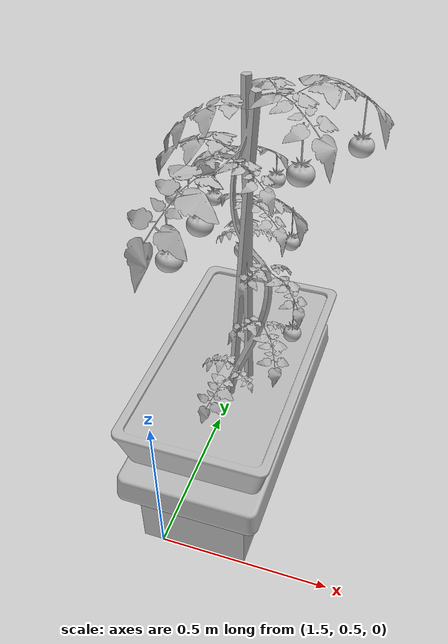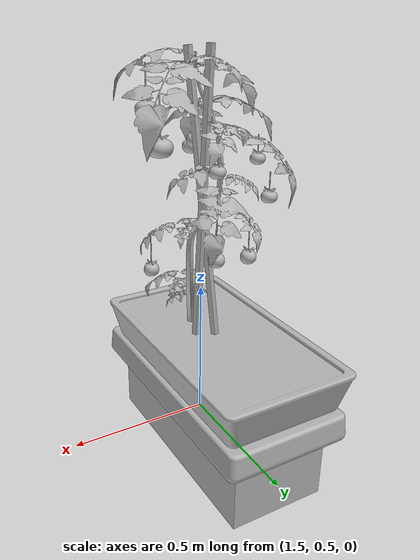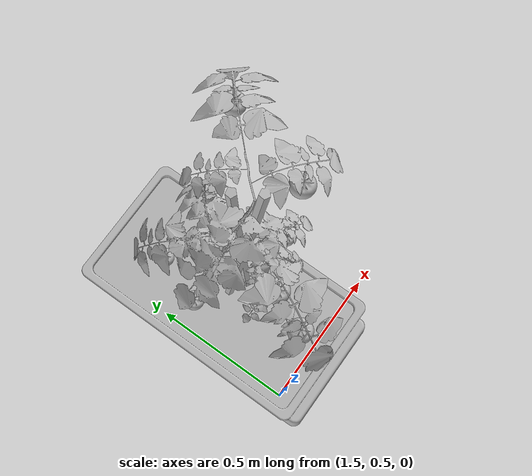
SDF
<sdf version="1.6">
 <world name="default">
  <model name="plant11">
   <static>0</static>
   <link name="tomato_plant_link">
    <inertial>
     <mass>20</mass>
     <inertia><ixx>1</ixx><ixy>0</ixy><ixz>0</ixz><iyy>1</iyy><iyz>0</iyz><izz>1</izz></inertia>
    </inertial>
    <visual name="visual">
     <geometry><mesh><uri>model://tomato_plant/meshes/tomato_plant.obj</uri></mesh></geometry>
    </visual>
    <collision name="collision">
     <pose>0 0 0.01 0 -0 0</pose>
     <geometry><cylinder><radius>0.2</radius><length>0.02</length></cylinder></geometry>
    </collision>
   </link>
   <link name="t_link_0">
    <pose>0.176111 0.046061 0.713729 0 -0 0</pose>
    <inertial>
     <mass>0.1</mass>
     <inertia><ixx>1</ixx><ixy>0</ixy><ixz>0</ixz><iyy>1</iyy><iyz>0</iyz><izz>1</izz></inertia>
    </inertial>
    <collision name="collision"><geometry><sphere><radius>0.02</radius></sphere></geometry></collision>
    <visual name="visual">
     <geometry><mesh><uri>model://green_tomato/meshes/green_tomato.obj</uri></mesh></geometry>
    </visual>
   </link>
   <joint name="t_joint_0" type="fixed">
    <parent>tomato_plant_link</parent>
    <child>t_link_0</child>
    <axis>
     <xyz>0 0 1</xyz>
     <use_parent_model_frame>1</use_parent_model_frame>
     <limit><lower>-1e+16</lower><upper>1e+16</upper></limit>
    </axis>
    <sensor name="force_torque" type="force_torque">
     <always_on>1</always_on>
     <update_rate>250</update_rate>
     <plugin name="breakable_0" filename="libBreakableJointPlugin.so">
      <breaking_force_N>20</breaking_force_N>
     </plugin>
    </sensor>
   </joint>
   <link name="t_link_1">
    <pose>0.063172 0.108629 0.685474 0 -0 0</pose>
    <inertial>
     <mass>0.1</mass>
     <inertia><ixx>1</ixx><ixy>0</ixy><ixz>0</ixz><iyy>1</iyy><iyz>0</iyz><izz>1</izz></inertia>
    </inertial>
    <collision name="collision"><geometry><sphere><radius>0.02</radius></sphere></geometry></collision>
    <visual name="visual">
     <geometry><mesh><uri>model://green_tomato/meshes/green_tomato.obj</uri></mesh></geometry>
    </visual>
   </link>
   <joint name="t_joint_1" type="fixed">
    <parent>tomato_plant_link</parent>
    <child>t_link_1</child>
    <axis>
     <xyz>0 0 1</xyz>
     <use_parent_model_frame>1</use_parent_model_frame>
     <limit><lower>-1e+16</lower><upper>1e+16</upper></limit>
    </axis>
    <sensor name="force_torque" type="force_torque">
     <always_on>1</always_on>
     <update_rate>250</update_rate>
     <plugin name="breakable_1" filename="libBreakableJointPlugin.so">
      <breaking_force_N>20</breaking_force_N>
     </plugin>
    </sensor>
   </joint>
   <link name="t_link_2">
    <pose>0.062027 -0.170581 0.614534 0 -0 0</pose>
    <inertial>
     <mass>0.1</mass>
     <inertia><ixx>1</ixx><ixy>0</ixy><ixz>0</ixz><iyy>1</iyy><iyz>0</iyz><izz>1</izz></inertia>
    </inertial>
    <collision name="collision"><geometry><sphere><radius>0.02</radius></sphere></geometry></collision>
    <visual name="visual">
     <geometry><mesh><uri>model://green_tomato/meshes/green_tomato.obj</uri></mesh></geometry>
    </visual>
   </link>
   <joint name="t_joint_2" type="fixed">
    <parent>tomato_plant_link</parent>
    <child>t_link_2</child>
    <axis>
     <xyz>0 0 1</xyz>
     <use_parent_model_frame>1</use_parent_model_frame>
     <limit><lower>-1e+16</lower><upper>1e+16</upper></limit>
    </axis>
    <sensor name="force_torque" type="force_torque">
     <always_on>1</always_on>
     <update_rate>250</update_rate>
     <plugin name="breakable_2" filename="libBreakableJointPlugin.so">
      <breaking_force_N>20</breaking_force_N>
     </plugin>
    </sensor>
   </joint>
   <link name="t_link_3">
    <pose>0.114746 0.0304 0.926457 0 -0 0</pose>
    <inertial>
     <mass>0.1</mass>
     <inertia><ixx>1</ixx><ixy>0</ixy><ixz>0</ixz><iyy>1</iyy><iyz>0</iyz><izz>1</izz></inertia>
    </inertial>
    <collision name="collision"><geometry><sphere><radius>0.02</radius></sphere></geometry></collision>
    <visual name="visual">
     <geometry><mesh><uri>model://yellow_tomato/meshes/yellow_tomato.obj</uri></mesh></geometry>
    </visual>
   </link>
   <joint name="t_joint_3" type="fixed">
    <parent>tomato_plant_link</parent>
    <child>t_link_3</child>
    <axis>
     <xyz>0 0 1</xyz>
     <use_parent_model_frame>1</use_parent_model_frame>
     <limit><lower>-1e+16</lower><upper>1e+16</upper></limit>
    </axis>
    <sensor name="force_torque" type="force_torque">
     <always_on>1</always_on>
     <update_rate>250</update_rate>
     <plugin name="breakable_3" filename="libBreakableJointPlugin.so">
      <breaking_force_N>20</breaking_force_N>
     </plugin>
    </sensor>
   </joint>
   <link name="t_link_4">
    <pose>0.003426 0.147925 0.840454 0 -0 0</pose>
    <inertial>
     <mass>0.1</mass>
     <inertia><ixx>1</ixx><ixy>0</ixy><ixz>0</ixz><iyy>1</iyy><iyz>0</iyz><izz>1</izz></inertia>
    </inertial>
    <collision name="collision"><geometry><sphere><radius>0.02</radius></sphere></geometry></collision>
    <visual name="visual">
     <geometry><mesh><uri>model://yellow_tomato/meshes/yellow_tomato.obj</uri></mesh></geometry>
    </visual>
   </link>
   <joint name="t_joint_4" type="fixed">
    <parent>tomato_plant_link</parent>
    <child>t_link_4</child>
    <axis>
     <xyz>0 0 1</xyz>
     <use_parent_model_frame>1</use_parent_model_frame>
     <limit><lower>-1e+16</lower><upper>1e+16</upper></limit>
    </axis>
    <sensor name="force_torque" type="force_torque">
     <always_on>1</always_on>
     <update_rate>250</update_rate>
     <plugin name="breakable_4" filename="libBreakableJointPlugin.so">
      <breaking_force_N>20</breaking_force_N>
     </plugin>
    </sensor>
   </joint>
   <link name="t_link_5">
    <pose>-0.12391 0.091553 0.91111 0 -0 0</pose>
    <inertial>
     <mass>0.1</mass>
     <inertia><ixx>1</ixx><ixy>0</ixy><ixz>0</ixz><iyy>1</iyy><iyz>0</iyz><izz>1</izz></inertia>
    </inertial>
    <collision name="collision"><geometry><sphere><radius>0.02</radius></sphere></geometry></collision>
    <visual name="visual">
     <geometry><mesh><uri>model://yellow_tomato/meshes/yellow_tomato.obj</uri></mesh></geometry>
    </visual>
   </link>
   <joint name="t_joint_5" type="fixed">
    <parent>tomato_plant_link</parent>
    <child>t_link_5</child>
    <axis>
     <xyz>0 0 1</xyz>
     <use_parent_model_frame>1</use_parent_model_frame>
     <limit><lower>-1e+16</lower><upper>1e+16</upper></limit>
    </axis>
    <sensor name="force_torque" type="force_torque">
     <always_on>1</always_on>
     <update_rate>250</update_rate>
     <plugin name="breakable_5" filename="libBreakableJointPlugin.so">
      <breaking_force_N>20</breaking_force_N>
     </plugin>
    </sensor>
   </joint>
   <link name="t_link_6">
    <pose>-0.23014 -0.132697 0.911579 0 -0 0</pose>
    <inertial>
     <mass>0.1</mass>
     <inertia><ixx>1</ixx><ixy>0</ixy><ixz>0</ixz><iyy>1</iyy><iyz>0</iyz><izz>1</izz></inertia>
    </inertial>
    <collision name="collision"><geometry><sphere><radius>0.03</radius></sphere></geometry></collision>
    <visual name="visual">
     <geometry><mesh><uri>model://red_tomato/meshes/red_tomato.obj</uri></mesh></geometry>
    </visual>
   </link>
   <joint name="t_joint_6" type="fixed">
    <parent>tomato_plant_link</parent>
    <child>t_link_6</child>
    <axis>
     <xyz>0 0 1</xyz>
     <use_parent_model_frame>1</use_parent_model_frame>
     <limit><lower>-1e+16</lower><upper>1e+16</upper></limit>
    </axis>
    <sensor name="force_torque" type="force_torque">
     <always_on>1</always_on>
     <update_rate>250</update_rate>
     <plugin name="breakable_6" filename="libBreakableJointPlugin.so">
      <breaking_force_N>20</breaking_force_N>
     </plugin>
    </sensor>
   </joint>
   <link name="t_link_7">
    <pose>-0.139776 -0.09326 0.950185 0 -0 0</pose>
    <inertial>
     <mass>0.1</mass>
     <inertia><ixx>1</ixx><ixy>0</ixy><ixz>0</ixz><iyy>1</iyy><iyz>0</iyz><izz>1</izz></inertia>
    </inertial>
    <collision name="collision"><geometry><sphere><radius>0.03</radius></sphere></geometry></collision>
    <visual name="visual">
     <geometry><mesh><uri>model://red_tomato/meshes/red_tomato.obj</uri></mesh></geometry>
    </visual>
   </link>
   <joint name="t_joint_7" type="fixed">
    <parent>tomato_plant_link</parent>
    <child>t_link_7</child>
    <axis>
     <xyz>0 0 1</xyz>
     <use_parent_model_frame>1</use_parent_model_frame>
     <limit><lower>-1e+16</lower><upper>1e+16</upper></limit>
    </axis>
    <sensor name="force_torque" type="force_torque">
     <always_on>1</always_on>
     <update_rate>250</update_rate>
     <plugin name="breakable_7" filename="libBreakableJointPlugin.so">
      <breaking_force_N>20</breaking_force_N>
     </plugin>
    </sensor>
   </joint>
   <link name="t_link_8">
    <pose>0.284181 -0.063758 1.01928 0 -0 0</pose>
    <inertial>
     <mass>0.1</mass>
     <inertia><ixx>1</ixx><ixy>0</ixy><ixz>0</ixz><iyy>1</iyy><iyz>0</iyz><izz>1</izz></inertia>
    </inertial>
    <collision name="collision"><geometry><sphere><radius>0.03</radius></sphere></geometry></collision>
    <visual name="visual">
     <geometry><mesh><uri>model://red_tomato/meshes/red_tomato.obj</uri></mesh></geometry>
    </visual>
   </link>
   <joint name="t_joint_8" type="fixed">
    <parent>tomato_plant_link</parent>
    <child>t_link_8</child>
    <axis>
     <xyz>0 0 1</xyz>
     <use_parent_model_frame>1</use_parent_model_frame>
     <limit><lower>-1e+16</lower><upper>1e+16</upper></limit>
    </axis>
    <sensor name="force_torque" type="force_torque">
     <always_on>1</always_on>
     <update_rate>250</update_rate>
     <plugin name="breakable_8" filename="libBreakableJointPlugin.so">
      <breaking_force_N>20</breaking_force_N>
     </plugin>
    </sensor>
   </joint>
   <link name="t_link_9">
    <pose>0.055319 -0.176349 1.06525 0 -0 0</pose>
    <inertial>
     <mass>0.1</mass>
     <inertia><ixx>1</ixx><ixy>0</ixy><ixz>0</ixz><iyy>1</iyy><iyz>0</iyz><izz>1</izz></inertia>
    </inertial>
    <collision name="collision"><geometry><sphere><radius>0.03</radius></sphere></geometry></collision>
    <visual name="visual">
     <geometry><mesh><uri>model://red_tomato/meshes/red_tomato.obj</uri></mesh></geometry>
    </visual>
   </link>
   <joint name="t_joint_9" type="fixed">
    <parent>tomato_plant_link</parent>
    <child>t_link_9</child>
    <axis>
     <xyz>0 0 1</xyz>
     <use_parent_model_frame>1</use_parent_model_frame>
     <limit><lower>-1e+16</lower><upper>1e+16</upper></limit>
    </axis>
    <sensor name="force_torque" type="force_torque">
     <always_on>1</always_on>
     <update_rate>250</update_rate>
     <plugin name="breakable_9" filename="libBreakableJointPlugin.so">
      <breaking_force_N>20</breaking_force_N>
     </plugin>
    </sensor>
   </joint>
   <pose>1.63707 0.808245 0.111064 0.000817 0.001696 0.784748</pose>
  </model>
  <model name="trough11">
   <static>1</static>
   <link name="trough_link">
    <visual name="visual"><geometry><mesh><uri>model://trough/meshes/truf.obj</uri></mesh></geometry></visual>
    <collision name="collision">
     <geometry><mesh><uri>model://trough/meshes/truf.obj</uri></mesh></geometry>
    </collision>
   </link>
   <link name="brick">
    <pose>0 -0.2 0 0 -0 0</pose>
    <visual name="visual"><geometry><mesh><uri>model://trough/meshes/brick.obj</uri></mesh></geometry></visual>
    <collision name="collision">
     <geometry><mesh><uri>model://trough/meshes/brick.obj</uri></mesh></geometry>
    </collision>
   </link>
   <pose>1.62 0.8 0.29 1.57 -0 1.57</pose>
  </model>
 </world>
</sdf>
